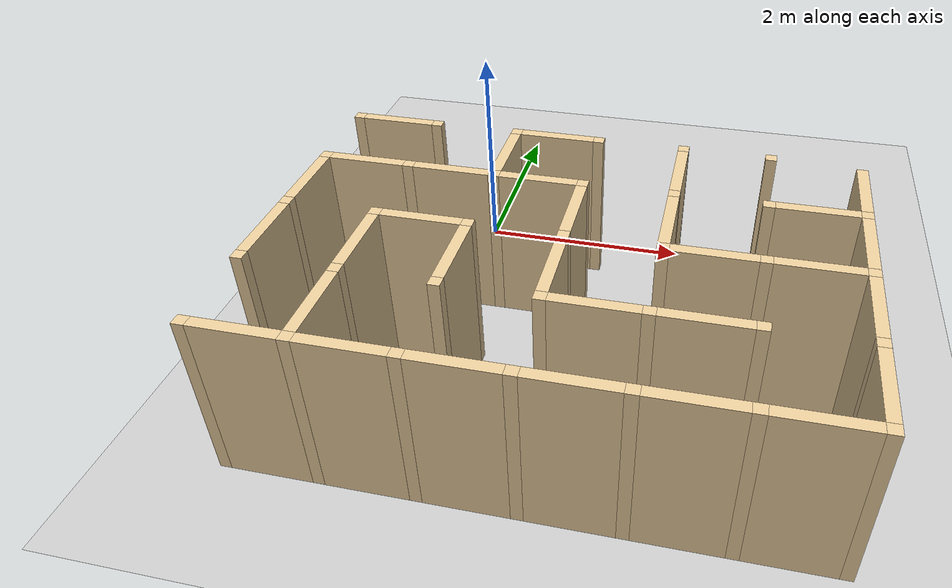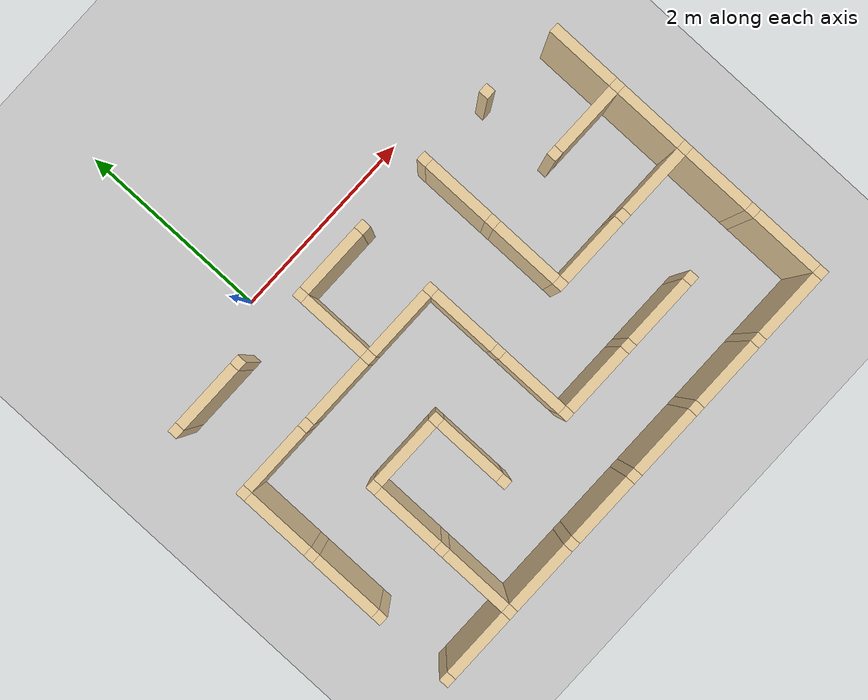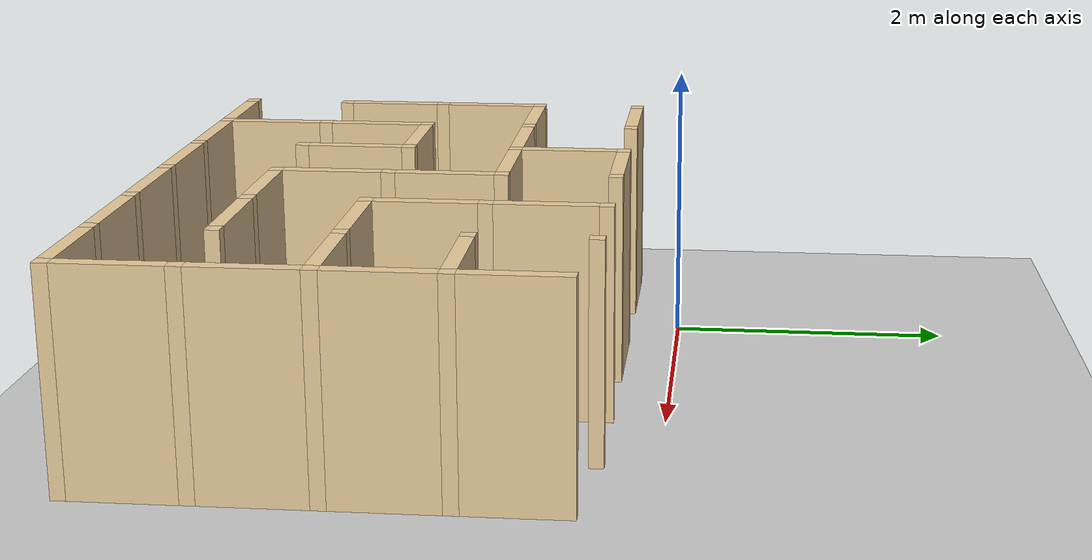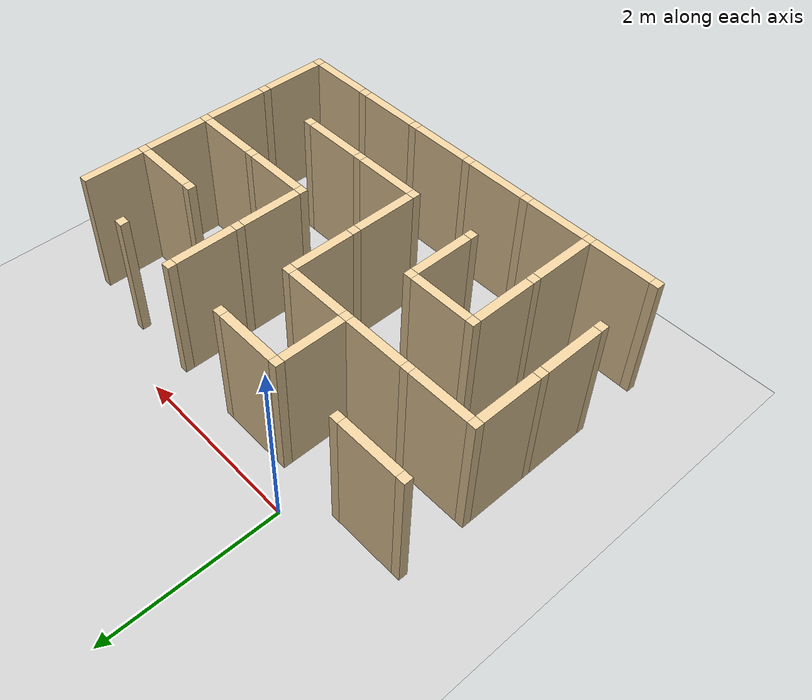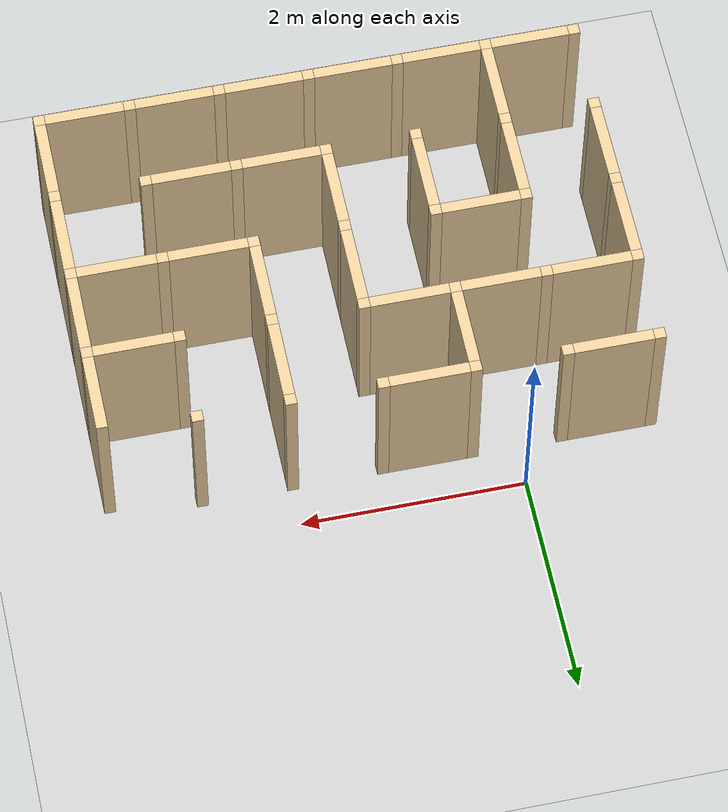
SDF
<sdf version="1.8">
 <world name="maze_world">
  <model name="ground_plane">
   <static>true</static>
   <link name="link">
    <collision name="collision">
     <geometry><plane><normal>0 0 1</normal><size>100 100</size></plane></geometry>
    </collision>
    <visual name="visual">
     <geometry><plane><normal>0 0 1</normal><size>100 100</size></plane></geometry>
     <material><ambient>0.8 0.8 0.8 1</ambient><diffuse>0.8 0.8 0.8 1</diffuse></material>
    </visual>
   </link>
  </model>
  <model name="maze">
   <link name="Wall_3_5_h">
    <collision name="Wall_0_Collision">
     <geometry><box><size>0.7000000000000001 0.1 1.5</size></box></geometry>
     <pose>0 0 0.75 0 -0 0</pose>
    </collision>
    <visual name="Wall_0_Visual">
     <pose>0 0 0.75 0 -0 0</pose>
     <geometry><box><size>0.7000000000000001 0.1 1.5</size></box></geometry>
     <material>
      <diffuse>0.921569 0.807843 0.615686 1</diffuse>
      <ambient>0.921569 0.807843 0.615686 1</ambient>
     </material>
     <meta><layer>0</layer></meta>
    </visual>
    <pose>-0.7999999999999998 -0.3999999999999999 0 0 -0 0</pose>
   </link>
   <link name="Joint_-1.1999999999999997_-0.3999999999999999">
    <collision name="Wall_2_Collision">
     <geometry><box><size>0.1 0.1 1.5</size></box></geometry>
     <pose>0 0 0.75 0 -0 0</pose>
    </collision>
    <visual name="Wall_2_Visual">
     <pose>0 0 0.75 0 -0 0</pose>
     <geometry><box><size>0.1 0.1 1.5</size></box></geometry>
     <material>
      <diffuse>0.921569 0.807843 0.615686 1</diffuse>
      <ambient>0.721569 0.907843 0.215686 1</ambient>
     </material>
     <meta><layer>0</layer></meta>
    </visual>
    <pose>-1.1999999999999997 -0.3999999999999999 0 0 -0 0</pose>
   </link>
   <link name="Joint_-0.3999999999999999_-0.3999999999999999">
    <collision name="Wall_2_Collision">
     <geometry><box><size>0.1 0.1 1.5</size></box></geometry>
     <pose>0 0 0.75 0 -0 0</pose>
    </collision>
    <visual name="Wall_2_Visual">
     <pose>0 0 0.75 0 -0 0</pose>
     <geometry><box><size>0.1 0.1 1.5</size></box></geometry>
     <material>
      <diffuse>0.921569 0.807843 0.615686 1</diffuse>
      <ambient>0.721569 0.907843 0.215686 1</ambient>
     </material>
     <meta><layer>0</layer></meta>
    </visual>
    <pose>-0.3999999999999999 -0.3999999999999999 0 0 -0 0</pose>
   </link>
   <link name="Wall_5_5_h">
    <collision name="Wall_0_Collision">
     <geometry><box><size>0.7000000000000001 0.1 1.5</size></box></geometry>
     <pose>0 0 0.75 0 -0 0</pose>
    </collision>
    <visual name="Wall_0_Visual">
     <pose>0 0 0.75 0 -0 0</pose>
     <geometry><box><size>0.7000000000000001 0.1 1.5</size></box></geometry>
     <material>
      <diffuse>0.921569 0.807843 0.615686 1</diffuse>
      <ambient>0.921569 0.807843 0.615686 1</ambient>
     </material>
     <meta><layer>0</layer></meta>
    </visual>
    <pose>0.8000000000000003 -0.3999999999999999 0 0 -0 0</pose>
   </link>
   <link name="Wall_5_5_v">
    <collision name="Wall_0_Collision">
     <geometry><box><size>0.7000000000000001 0.1 1.5</size></box></geometry>
     <pose>0 0 0.75 0 -0 0</pose>
    </collision>
    <visual name="Wall_0_Visual">
     <pose>0 0 0.75 0 -0 0</pose>
     <geometry><box><size>0.7000000000000001 0.1 1.5</size></box></geometry>
     <material>
      <diffuse>0.921569 0.807843 0.615686 1</diffuse>
      <ambient>0.921569 0.807843 0.615686 1</ambient>
     </material>
     <meta><layer>0</layer></meta>
    </visual>
    <pose>0.3999999999999999 -0.8000000000000003 0 0 -0 1.5708</pose>
   </link>
   <link name="Joint_0.3999999999999999_-0.3999999999999999">
    <collision name="Wall_2_Collision">
     <geometry><box><size>0.1 0.1 1.5</size></box></geometry>
     <pose>0 0 0.75 0 -0 0</pose>
    </collision>
    <visual name="Wall_2_Visual">
     <pose>0 0 0.75 0 -0 0</pose>
     <geometry><box><size>0.1 0.1 1.5</size></box></geometry>
     <material>
      <diffuse>0.921569 0.807843 0.615686 1</diffuse>
      <ambient>0.721569 0.907843 0.215686 1</ambient>
     </material>
     <meta><layer>0</layer></meta>
    </visual>
    <pose>0.3999999999999999 -0.3999999999999999 0 0 -0 0</pose>
   </link>
   <link name="Joint_1.2000000000000006_-0.3999999999999999">
    <collision name="Wall_2_Collision">
     <geometry><box><size>0.1 0.1 1.5</size></box></geometry>
     <pose>0 0 0.75 0 -0 0</pose>
    </collision>
    <visual name="Wall_2_Visual">
     <pose>0 0 0.75 0 -0 0</pose>
     <geometry><box><size>0.1 0.1 1.5</size></box></geometry>
     <material>
      <diffuse>0.921569 0.807843 0.615686 1</diffuse>
      <ambient>0.721569 0.907843 0.215686 1</ambient>
     </material>
     <meta><layer>0</layer></meta>
    </visual>
    <pose>1.2000000000000006 -0.3999999999999999 0 0 -0 0</pose>
   </link>
   <link name="Wall_7_5_v">
    <collision name="Wall_0_Collision">
     <geometry><box><size>0.7000000000000001 0.1 1.5</size></box></geometry>
     <pose>0 0 0.75 0 -0 0</pose>
    </collision>
    <visual name="Wall_0_Visual">
     <pose>0 0 0.75 0 -0 0</pose>
     <geometry><box><size>0.7000000000000001 0.1 1.5</size></box></geometry>
     <material>
      <diffuse>0.921569 0.807843 0.615686 1</diffuse>
      <ambient>0.921569 0.807843 0.615686 1</ambient>
     </material>
     <meta><layer>0</layer></meta>
    </visual>
    <pose>2.0000000000000004 -0.8000000000000003 0 0 -0 1.5708</pose>
   </link>
   <link name="Joint_2.0000000000000004_-0.3999999999999999">
    <collision name="Wall_2_Collision">
     <geometry><box><size>0.1 0.1 1.5</size></box></geometry>
     <pose>0 0 0.75 0 -0 0</pose>
    </collision>
    <visual name="Wall_2_Visual">
     <pose>0 0 0.75 0 -0 0</pose>
     <geometry><box><size>0.1 0.1 1.5</size></box></geometry>
     <material>
      <diffuse>0.921569 0.807843 0.615686 1</diffuse>
      <ambient>0.721569 0.907843 0.215686 1</ambient>
     </material>
     <meta><layer>0</layer></meta>
    </visual>
    <pose>2.0000000000000004 -0.3999999999999999 0 0 -0 0</pose>
   </link>
   <link name="Joint_2.8000000000000003_-0.3999999999999999">
    <collision name="Wall_2_Collision">
     <geometry><box><size>0.1 0.1 1.5</size></box></geometry>
     <pose>0 0 0.75 0 -0 0</pose>
    </collision>
    <visual name="Wall_2_Visual">
     <pose>0 0 0.75 0 -0 0</pose>
     <geometry><box><size>0.1 0.1 1.5</size></box></geometry>
     <material>
      <diffuse>0.921569 0.807843 0.615686 1</diffuse>
      <ambient>0.721569 0.907843 0.215686 1</ambient>
     </material>
     <meta><layer>0</layer></meta>
    </visual>
    <pose>2.8000000000000003 -0.3999999999999999 0 0 -0 0</pose>
   </link>
   <link name="Wall_9_5_v">
    <collision name="Wall_0_Collision">
     <geometry><box><size>0.7000000000000001 0.1 1.5</size></box></geometry>
     <pose>0 0 0.75 0 -0 0</pose>
    </collision>
    <visual name="Wall_0_Visual">
     <pose>0 0 0.75 0 -0 0</pose>
     <geometry><box><size>0.7000000000000001 0.1 1.5</size></box></geometry>
     <material>
      <diffuse>0.921569 0.807843 0.615686 1</diffuse>
      <ambient>0.921569 0.807843 0.615686 1</ambient>
     </material>
     <meta><layer>0</layer></meta>
    </visual>
    <pose>3.6 -0.8000000000000003 0 0 -0 1.5708</pose>
   </link>
   <link name="Wall_3_6_h">
    <collision name="Wall_0_Collision">
     <geometry><box><size>0.7000000000000001 0.1 1.5</size></box></geometry>
     <pose>0 0 0.75 0 -0 0</pose>
    </collision>
    <visual name="Wall_0_Visual">
     <pose>0 0 0.75 0 -0 0</pose>
     <geometry><box><size>0.7000000000000001 0.1 1.5</size></box></geometry>
     <material>
      <diffuse>0.921569 0.807843 0.615686 1</diffuse>
      <ambient>0.921569 0.807843 0.615686 1</ambient>
     </material>
     <meta><layer>0</layer></meta>
    </visual>
    <pose>-0.7999999999999998 -1.2000000000000006 0 0 -0 0</pose>
   </link>
   <link name="Wall_3_6_v">
    <collision name="Wall_0_Collision">
     <geometry><box><size>0.7000000000000001 0.1 1.5</size></box></geometry>
     <pose>0 0 0.75 0 -0 0</pose>
    </collision>
    <visual name="Wall_0_Visual">
     <pose>0 0 0.75 0 -0 0</pose>
     <geometry><box><size>0.7000000000000001 0.1 1.5</size></box></geometry>
     <material>
      <diffuse>0.921569 0.807843 0.615686 1</diffuse>
      <ambient>0.921569 0.807843 0.615686 1</ambient>
     </material>
     <meta><layer>0</layer></meta>
    </visual>
    <pose>-1.1999999999999997 -1.600000000000001 0 0 -0 1.5708</pose>
   </link>
   <link name="Joint_-1.1999999999999997_-1.2000000000000006">
    <collision name="Wall_2_Collision">
     <geometry><box><size>0.1 0.1 1.5</size></box></geometry>
     <pose>0 0 0.75 0 -0 0</pose>
    </collision>
    <visual name="Wall_2_Visual">
     <pose>0 0 0.75 0 -0 0</pose>
     <geometry><box><size>0.1 0.1 1.5</size></box></geometry>
     <material>
      <diffuse>0.921569 0.807843 0.615686 1</diffuse>
      <ambient>0.721569 0.907843 0.215686 1</ambient>
     </material>
     <meta><layer>0</layer></meta>
    </visual>
    <pose>-1.1999999999999997 -1.2000000000000006 0 0 -0 0</pose>
   </link>
   <link name="Wall_4_6_h">
    <collision name="Wall_0_Collision">
     <geometry><box><size>0.7000000000000001 0.1 1.5</size></box></geometry>
     <pose>0 0 0.75 0 -0 0</pose>
    </collision>
    <visual name="Wall_0_Visual">
     <pose>0 0 0.75 0 -0 0</pose>
     <geometry><box><size>0.7000000000000001 0.1 1.5</size></box></geometry>
     <material>
      <diffuse>0.921569 0.807843 0.615686 1</diffuse>
      <ambient>0.921569 0.807843 0.615686 1</ambient>
     </material>
     <meta><layer>0</layer></meta>
    </visual>
    <pose>0.0 -1.2000000000000006 0 0 -0 0</pose>
   </link>
   <link name="Joint_-0.3999999999999999_-1.2000000000000006">
    <collision name="Wall_2_Collision">
     <geometry><box><size>0.1 0.1 1.5</size></box></geometry>
     <pose>0 0 0.75 0 -0 0</pose>
    </collision>
    <visual name="Wall_2_Visual">
     <pose>0 0 0.75 0 -0 0</pose>
     <geometry><box><size>0.1 0.1 1.5</size></box></geometry>
     <material>
      <diffuse>0.921569 0.807843 0.615686 1</diffuse>
      <ambient>0.721569 0.907843 0.215686 1</ambient>
     </material>
     <meta><layer>0</layer></meta>
    </visual>
    <pose>-0.3999999999999999 -1.2000000000000006 0 0 -0 0</pose>
   </link>
   <link name="Wall_5_6_h">
    <collision name="Wall_0_Collision">
     <geometry><box><size>0.7000000000000001 0.1 1.5</size></box></geometry>
     <pose>0 0 0.75 0 -0 0</pose>
    </collision>
    <visual name="Wall_0_Visual">
     <pose>0 0 0.75 0 -0 0</pose>
     <geometry><box><size>0.7000000000000001 0.1 1.5</size></box></geometry>
     <material>
      <diffuse>0.921569 0.807843 0.615686 1</diffuse>
      <ambient>0.921569 0.807843 0.615686 1</ambient>
     </material>
     <meta><layer>0</layer></meta>
    </visual>
    <pose>0.8000000000000003 -1.2000000000000006 0 0 -0 0</pose>
   </link>
   <link name="Joint_0.3999999999999999_-1.2000000000000006">
    <collision name="Wall_2_Collision">
     <geometry><box><size>0.1 0.1 1.5</size></box></geometry>
     <pose>0 0 0.75 0 -0 0</pose>
    </collision>
    <visual name="Wall_2_Visual">
     <pose>0 0 0.75 0 -0 0</pose>
     <geometry><box><size>0.1 0.1 1.5</size></box></geometry>
     <material>
      <diffuse>0.921569 0.807843 0.615686 1</diffuse>
      <ambient>0.721569 0.907843 0.215686 1</ambient>
     </material>
     <meta><layer>0</layer></meta>
    </visual>
    <pose>0.3999999999999999 -1.2000000000000006 0 0 -0 0</pose>
   </link>
   <link name="Wall_6_6_v">
    <collision name="Wall_0_Collision">
     <geometry><box><size>0.7000000000000001 0.1 1.5</size></box></geometry>
     <pose>0 0 0.75 0 -0 0</pose>
    </collision>
    <visual name="Wall_0_Visual">
     <pose>0 0 0.75 0 -0 0</pose>
     <geometry><box><size>0.7000000000000001 0.1 1.5</size></box></geometry>
     <material>
      <diffuse>0.921569 0.807843 0.615686 1</diffuse>
      <ambient>0.921569 0.807843 0.615686 1</ambient>
     </material>
     <meta><layer>0</layer></meta>
    </visual>
    <pose>1.2000000000000006 -1.600000000000001 0 0 -0 1.5708</pose>
   </link>
   <link name="Joint_1.2000000000000006_-1.2000000000000006">
    <collision name="Wall_2_Collision">
     <geometry><box><size>0.1 0.1 1.5</size></box></geometry>
     <pose>0 0 0.75 0 -0 0</pose>
    </collision>
    <visual name="Wall_2_Visual">
     <pose>0 0 0.75 0 -0 0</pose>
     <geometry><box><size>0.1 0.1 1.5</size></box></geometry>
     <material>
      <diffuse>0.921569 0.807843 0.615686 1</diffuse>
      <ambient>0.721569 0.907843 0.215686 1</ambient>
     </material>
     <meta><layer>0</layer></meta>
    </visual>
    <pose>1.2000000000000006 -1.2000000000000006 0 0 -0 0</pose>
   </link>
   <link name="Wall_7_6_v">
    <collision name="Wall_0_Collision">
     <geometry><box><size>0.7000000000000001 0.1 1.5</size></box></geometry>
     <pose>0 0 0.75 0 -0 0</pose>
    </collision>
    <visual name="Wall_0_Visual">
     <pose>0 0 0.75 0 -0 0</pose>
     <geometry><box><size>0.7000000000000001 0.1 1.5</size></box></geometry>
     <material>
      <diffuse>0.921569 0.807843 0.615686 1</diffuse>
      <ambient>0.921569 0.807843 0.615686 1</ambient>
     </material>
     <meta><layer>0</layer></meta>
    </visual>
    <pose>2.0000000000000004 -1.600000000000001 0 0 -0 1.5708</pose>
   </link>
   <link name="Joint_2.0000000000000004_-1.2000000000000006">
    <collision name="Wall_2_Collision">
     <geometry><box><size>0.1 0.1 1.5</size></box></geometry>
     <pose>0 0 0.75 0 -0 0</pose>
    </collision>
    <visual name="Wall_2_Visual">
     <pose>0 0 0.75 0 -0 0</pose>
     <geometry><box><size>0.1 0.1 1.5</size></box></geometry>
     <material>
      <diffuse>0.921569 0.807843 0.615686 1</diffuse>
      <ambient>0.721569 0.907843 0.215686 1</ambient>
     </material>
     <meta><layer>0</layer></meta>
    </visual>
    <pose>2.0000000000000004 -1.2000000000000006 0 0 -0 0</pose>
   </link>
   <link name="Wall_8_6_h">
    <collision name="Wall_0_Collision">
     <geometry><box><size>0.7000000000000001 0.1 1.5</size></box></geometry>
     <pose>0 0 0.75 0 -0 0</pose>
    </collision>
    <visual name="Wall_0_Visual">
     <pose>0 0 0.75 0 -0 0</pose>
     <geometry><box><size>0.7000000000000001 0.1 1.5</size></box></geometry>
     <material>
      <diffuse>0.921569 0.807843 0.615686 1</diffuse>
      <ambient>0.921569 0.807843 0.615686 1</ambient>
     </material>
     <meta><layer>0</layer></meta>
    </visual>
    <pose>3.2000000000000006 -1.2000000000000006 0 0 -0 0</pose>
   </link>
   <link name="Joint_2.8000000000000003_-1.2000000000000006">
    <collision name="Wall_2_Collision">
     <geometry><box><size>0.1 0.1 1.5</size></box></geometry>
     <pose>0 0 0.75 0 -0 0</pose>
    </collision>
    <visual name="Wall_2_Visual">
     <pose>0 0 0.75 0 -0 0</pose>
     <geometry><box><size>0.1 0.1 1.5</size></box></geometry>
     <material>
      <diffuse>0.921569 0.807843 0.615686 1</diffuse>
      <ambient>0.721569 0.907843 0.215686 1</ambient>
     </material>
     <meta><layer>0</layer></meta>
    </visual>
    <pose>2.8000000000000003 -1.2000000000000006 0 0 -0 0</pose>
   </link>
   <link name="Wall_9_6_v">
    <collision name="Wall_0_Collision">
     <geometry><box><size>0.7000000000000001 0.1 1.5</size></box></geometry>
     <pose>0 0 0.75 0 -0 0</pose>
    </collision>
    <visual name="Wall_0_Visual">
     <pose>0 0 0.75 0 -0 0</pose>
     <geometry><box><size>0.7000000000000001 0.1 1.5</size></box></geometry>
     <material>
      <diffuse>0.921569 0.807843 0.615686 1</diffuse>
      <ambient>0.921569 0.807843 0.615686 1</ambient>
     </material>
     <meta><layer>0</layer></meta>
    </visual>
    <pose>3.6 -1.600000000000001 0 0 -0 1.5708</pose>
   </link>
   <link name="Joint_3.6_-1.2000000000000006">
    <collision name="Wall_2_Collision">
     <geometry><box><size>0.1 0.1 1.5</size></box></geometry>
     <pose>0 0 0.75 0 -0 0</pose>
    </collision>
    <visual name="Wall_2_Visual">
     <pose>0 0 0.75 0 -0 0</pose>
     <geometry><box><size>0.1 0.1 1.5</size></box></geometry>
     <material>
      <diffuse>0.921569 0.807843 0.615686 1</diffuse>
      <ambient>0.721569 0.907843 0.215686 1</ambient>
     </material>
     <meta><layer>0</layer></meta>
    </visual>
    <pose>3.6 -1.2000000000000006 0 0 -0 0</pose>
   </link>
   <link name="Wall_3_7_v">
    <collision name="Wall_0_Collision">
     <geometry><box><size>0.7000000000000001 0.1 1.5</size></box></geometry>
     <pose>0 0 0.75 0 -0 0</pose>
    </collision>
    <visual name="Wall_0_Visual">
     <pose>0 0 0.75 0 -0 0</pose>
     <geometry><box><size>0.7000000000000001 0.1 1.5</size></box></geometry>
     <material>
      <diffuse>0.921569 0.807843 0.615686 1</diffuse>
      <ambient>0.921569 0.807843 0.615686 1</ambient>
     </material>
     <meta><layer>0</layer></meta>
    </visual>
    <pose>-1.1999999999999997 -2.400000000000001 0 0 -0 1.5708</pose>
   </link>
   <link name="Joint_-1.1999999999999997_-2.0000000000000004">
    <collision name="Wall_2_Collision">
     <geometry><box><size>0.1 0.1 1.5</size></box></geometry>
     <pose>0 0 0.75 0 -0 0</pose>
    </collision>
    <visual name="Wall_2_Visual">
     <pose>0 0 0.75 0 -0 0</pose>
     <geometry><box><size>0.1 0.1 1.5</size></box></geometry>
     <material>
      <diffuse>0.921569 0.807843 0.615686 1</diffuse>
      <ambient>0.721569 0.907843 0.215686 1</ambient>
     </material>
     <meta><layer>0</layer></meta>
    </visual>
    <pose>-1.1999999999999997 -2.0000000000000004 0 0 -0 0</pose>
   </link>
   <link name="Wall_4_7_h">
    <collision name="Wall_0_Collision">
     <geometry><box><size>0.7000000000000001 0.1 1.5</size></box></geometry>
     <pose>0 0 0.75 0 -0 0</pose>
    </collision>
    <visual name="Wall_0_Visual">
     <pose>0 0 0.75 0 -0 0</pose>
     <geometry><box><size>0.7000000000000001 0.1 1.5</size></box></geometry>
     <material>
      <diffuse>0.921569 0.807843 0.615686 1</diffuse>
      <ambient>0.921569 0.807843 0.615686 1</ambient>
     </material>
     <meta><layer>0</layer></meta>
    </visual>
    <pose>0.0 -2.0000000000000004 0 0 -0 0</pose>
   </link>
   <link name="Wall_4_7_v">
    <collision name="Wall_0_Collision">
     <geometry><box><size>0.7000000000000001 0.1 1.5</size></box></geometry>
     <pose>0 0 0.75 0 -0 0</pose>
    </collision>
    <visual name="Wall_0_Visual">
     <pose>0 0 0.75 0 -0 0</pose>
     <geometry><box><size>0.7000000000000001 0.1 1.5</size></box></geometry>
     <material>
      <diffuse>0.921569 0.807843 0.615686 1</diffuse>
      <ambient>0.921569 0.807843 0.615686 1</ambient>
     </material>
     <meta><layer>0</layer></meta>
    </visual>
    <pose>-0.3999999999999999 -2.400000000000001 0 0 -0 1.5708</pose>
   </link>
   <link name="Joint_-0.3999999999999999_-2.0000000000000004">
    <collision name="Wall_2_Collision">
     <geometry><box><size>0.1 0.1 1.5</size></box></geometry>
     <pose>0 0 0.75 0 -0 0</pose>
    </collision>
    <visual name="Wall_2_Visual">
     <pose>0 0 0.75 0 -0 0</pose>
     <geometry><box><size>0.1 0.1 1.5</size></box></geometry>
     <material>
      <diffuse>0.921569 0.807843 0.615686 1</diffuse>
      <ambient>0.721569 0.907843 0.215686 1</ambient>
     </material>
     <meta><layer>0</layer></meta>
    </visual>
    <pose>-0.3999999999999999 -2.0000000000000004 0 0 -0 0</pose>
   </link>
   <link name="Wall_5_7_v">
    <collision name="Wall_0_Collision">
     <geometry><box><size>0.7000000000000001 0.1 1.5</size></box></geometry>
     <pose>0 0 0.75 0 -0 0</pose>
    </collision>
    <visual name="Wall_0_Visual">
     <pose>0 0 0.75 0 -0 0</pose>
     <geometry><box><size>0.7000000000000001 0.1 1.5</size></box></geometry>
     <material>
      <diffuse>0.921569 0.807843 0.615686 1</diffuse>
      <ambient>0.921569 0.807843 0.615686 1</ambient>
     </material>
     <meta><layer>0</layer></meta>
    </visual>
    <pose>0.3999999999999999 -2.400000000000001 0 0 -0 1.5708</pose>
   </link>
   <link name="Joint_0.3999999999999999_-2.0000000000000004">
    <collision name="Wall_2_Collision">
     <geometry><box><size>0.1 0.1 1.5</size></box></geometry>
     <pose>0 0 0.75 0 -0 0</pose>
    </collision>
    <visual name="Wall_2_Visual">
     <pose>0 0 0.75 0 -0 0</pose>
     <geometry><box><size>0.1 0.1 1.5</size></box></geometry>
     <material>
      <diffuse>0.921569 0.807843 0.615686 1</diffuse>
      <ambient>0.721569 0.907843 0.215686 1</ambient>
     </material>
     <meta><layer>0</layer></meta>
    </visual>
    <pose>0.3999999999999999 -2.0000000000000004 0 0 -0 0</pose>
   </link>
   <link name="Wall_6_7_v">
    <collision name="Wall_0_Collision">
     <geometry><box><size>0.7000000000000001 0.1 1.5</size></box></geometry>
     <pose>0 0 0.75 0 -0 0</pose>
    </collision>
    <visual name="Wall_0_Visual">
     <pose>0 0 0.75 0 -0 0</pose>
     <geometry><box><size>0.7000000000000001 0.1 1.5</size></box></geometry>
     <material>
      <diffuse>0.921569 0.807843 0.615686 1</diffuse>
      <ambient>0.921569 0.807843 0.615686 1</ambient>
     </material>
     <meta><layer>0</layer></meta>
    </visual>
    <pose>1.2000000000000006 -2.400000000000001 0 0 -0 1.5708</pose>
   </link>
   <link name="Joint_1.2000000000000006_-2.0000000000000004">
    <collision name="Wall_2_Collision">
     <geometry><box><size>0.1 0.1 1.5</size></box></geometry>
     <pose>0 0 0.75 0 -0 0</pose>
    </collision>
    <visual name="Wall_2_Visual">
     <pose>0 0 0.75 0 -0 0</pose>
     <geometry><box><size>0.1 0.1 1.5</size></box></geometry>
     <material>
      <diffuse>0.921569 0.807843 0.615686 1</diffuse>
      <ambient>0.721569 0.907843 0.215686 1</ambient>
     </material>
     <meta><layer>0</layer></meta>
    </visual>
    <pose>1.2000000000000006 -2.0000000000000004 0 0 -0 0</pose>
   </link>
   <link name="Wall_7_7_h">
    <collision name="Wall_0_Collision">
     <geometry><box><size>0.7000000000000001 0.1 1.5</size></box></geometry>
     <pose>0 0 0.75 0 -0 0</pose>
    </collision>
    <visual name="Wall_0_Visual">
     <pose>0 0 0.75 0 -0 0</pose>
     <geometry><box><size>0.7000000000000001 0.1 1.5</size></box></geometry>
     <material>
      <diffuse>0.921569 0.807843 0.615686 1</diffuse>
      <ambient>0.921569 0.807843 0.615686 1</ambient>
     </material>
     <meta><layer>0</layer></meta>
    </visual>
    <pose>2.400000000000001 -2.0000000000000004 0 0 -0 0</pose>
   </link>
   <link name="Joint_2.0000000000000004_-2.0000000000000004">
    <collision name="Wall_2_Collision">
     <geometry><box><size>0.1 0.1 1.5</size></box></geometry>
     <pose>0 0 0.75 0 -0 0</pose>
    </collision>
    <visual name="Wall_2_Visual">
     <pose>0 0 0.75 0 -0 0</pose>
     <geometry><box><size>0.1 0.1 1.5</size></box></geometry>
     <material>
      <diffuse>0.921569 0.807843 0.615686 1</diffuse>
      <ambient>0.721569 0.907843 0.215686 1</ambient>
     </material>
     <meta><layer>0</layer></meta>
    </visual>
    <pose>2.0000000000000004 -2.0000000000000004 0 0 -0 0</pose>
   </link>
   <link name="Wall_8_7_h">
    <collision name="Wall_0_Collision">
     <geometry><box><size>0.7000000000000001 0.1 1.5</size></box></geometry>
     <pose>0 0 0.75 0 -0 0</pose>
    </collision>
    <visual name="Wall_0_Visual">
     <pose>0 0 0.75 0 -0 0</pose>
     <geometry><box><size>0.7000000000000001 0.1 1.5</size></box></geometry>
     <material>
      <diffuse>0.921569 0.807843 0.615686 1</diffuse>
      <ambient>0.921569 0.807843 0.615686 1</ambient>
     </material>
     <meta><layer>0</layer></meta>
    </visual>
    <pose>3.2000000000000006 -2.0000000000000004 0 0 -0 0</pose>
   </link>
   <link name="Joint_2.8000000000000003_-2.0000000000000004">
    <collision name="Wall_2_Collision">
     <geometry><box><size>0.1 0.1 1.5</size></box></geometry>
     <pose>0 0 0.75 0 -0 0</pose>
    </collision>
    <visual name="Wall_2_Visual">
     <pose>0 0 0.75 0 -0 0</pose>
     <geometry><box><size>0.1 0.1 1.5</size></box></geometry>
     <material>
      <diffuse>0.921569 0.807843 0.615686 1</diffuse>
      <ambient>0.721569 0.907843 0.215686 1</ambient>
     </material>
     <meta><layer>0</layer></meta>
    </visual>
    <pose>2.8000000000000003 -2.0000000000000004 0 0 -0 0</pose>
   </link>
   <link name="Wall_9_7_v">
    <collision name="Wall_0_Collision">
     <geometry><box><size>0.7000000000000001 0.1 1.5</size></box></geometry>
     <pose>0 0 0.75 0 -0 0</pose>
    </collision>
    <visual name="Wall_0_Visual">
     <pose>0 0 0.75 0 -0 0</pose>
     <geometry><box><size>0.7000000000000001 0.1 1.5</size></box></geometry>
     <material>
      <diffuse>0.921569 0.807843 0.615686 1</diffuse>
      <ambient>0.921569 0.807843 0.615686 1</ambient>
     </material>
     <meta><layer>0</layer></meta>
    </visual>
    <pose>3.6 -2.400000000000001 0 0 -0 1.5708</pose>
   </link>
   <link name="Joint_3.6_-2.0000000000000004">
    <collision name="Wall_2_Collision">
     <geometry><box><size>0.1 0.1 1.5</size></box></geometry>
     <pose>0 0 0.75 0 -0 0</pose>
    </collision>
    <visual name="Wall_2_Visual">
     <pose>0 0 0.75 0 -0 0</pose>
     <geometry><box><size>0.1 0.1 1.5</size></box></geometry>
     <material>
      <diffuse>0.921569 0.807843 0.615686 1</diffuse>
      <ambient>0.721569 0.907843 0.215686 1</ambient>
     </material>
     <meta><layer>0</layer></meta>
    </visual>
    <pose>3.6 -2.0000000000000004 0 0 -0 0</pose>
   </link>
   <link name="Joint_-1.1999999999999997_-2.8000000000000003">
    <collision name="Wall_2_Collision">
     <geometry><box><size>0.1 0.1 1.5</size></box></geometry>
     <pose>0 0 0.75 0 -0 0</pose>
    </collision>
    <visual name="Wall_2_Visual">
     <pose>0 0 0.75 0 -0 0</pose>
     <geometry><box><size>0.1 0.1 1.5</size></box></geometry>
     <material>
      <diffuse>0.921569 0.807843 0.615686 1</diffuse>
      <ambient>0.721569 0.907843 0.215686 1</ambient>
     </material>
     <meta><layer>0</layer></meta>
    </visual>
    <pose>-1.1999999999999997 -2.8000000000000003 0 0 -0 0</pose>
   </link>
   <link name="Wall_3_9_h">
    <collision name="Wall_0_Collision">
     <geometry><box><size>0.7000000000000001 0.1 1.5</size></box></geometry>
     <pose>0 0 0.75 0 -0 0</pose>
    </collision>
    <visual name="Wall_0_Visual">
     <pose>0 0 0.75 0 -0 0</pose>
     <geometry><box><size>0.7000000000000001 0.1 1.5</size></box></geometry>
     <material>
      <diffuse>0.921569 0.807843 0.615686 1</diffuse>
      <ambient>0.921569 0.807843 0.615686 1</ambient>
     </material>
     <meta><layer>0</layer></meta>
    </visual>
    <pose>-0.7999999999999998 -3.6 0 0 -0 0</pose>
   </link>
   <link name="Joint_-1.1999999999999997_-3.6">
    <collision name="Wall_2_Collision">
     <geometry><box><size>0.1 0.1 1.5</size></box></geometry>
     <pose>0 0 0.75 0 -0 0</pose>
    </collision>
    <visual name="Wall_2_Visual">
     <pose>0 0 0.75 0 -0 0</pose>
     <geometry><box><size>0.1 0.1 1.5</size></box></geometry>
     <material>
      <diffuse>0.921569 0.807843 0.615686 1</diffuse>
      <ambient>0.721569 0.907843 0.215686 1</ambient>
     </material>
     <meta><layer>0</layer></meta>
    </visual>
    <pose>-1.1999999999999997 -3.6 0 0 -0 0</pose>
   </link>
   <link name="Wall_4_8_v">
    <collision name="Wall_0_Collision">
     <geometry><box><size>0.7000000000000001 0.1 1.5</size></box></geometry>
     <pose>0 0 0.75 0 -0 0</pose>
    </collision>
    <visual name="Wall_0_Visual">
     <pose>0 0 0.75 0 -0 0</pose>
     <geometry><box><size>0.7000000000000001 0.1 1.5</size></box></geometry>
     <material>
      <diffuse>0.921569 0.807843 0.615686 1</diffuse>
      <ambient>0.921569 0.807843 0.615686 1</ambient>
     </material>
     <meta><layer>0</layer></meta>
    </visual>
    <pose>-0.3999999999999999 -3.2000000000000006 0 0 -0 1.5708</pose>
   </link>
   <link name="Joint_-0.3999999999999999_-2.8000000000000003">
    <collision name="Wall_2_Collision">
     <geometry><box><size>0.1 0.1 1.5</size></box></geometry>
     <pose>0 0 0.75 0 -0 0</pose>
    </collision>
    <visual name="Wall_2_Visual">
     <pose>0 0 0.75 0 -0 0</pose>
     <geometry><box><size>0.1 0.1 1.5</size></box></geometry>
     <material>
      <diffuse>0.921569 0.807843 0.615686 1</diffuse>
      <ambient>0.721569 0.907843 0.215686 1</ambient>
     </material>
     <meta><layer>0</layer></meta>
    </visual>
    <pose>-0.3999999999999999 -2.8000000000000003 0 0 -0 0</pose>
   </link>
   <link name="Wall_4_9_h">
    <collision name="Wall_0_Collision">
     <geometry><box><size>0.7000000000000001 0.1 1.5</size></box></geometry>
     <pose>0 0 0.75 0 -0 0</pose>
    </collision>
    <visual name="Wall_0_Visual">
     <pose>0 0 0.75 0 -0 0</pose>
     <geometry><box><size>0.7000000000000001 0.1 1.5</size></box></geometry>
     <material>
      <diffuse>0.921569 0.807843 0.615686 1</diffuse>
      <ambient>0.921569 0.807843 0.615686 1</ambient>
     </material>
     <meta><layer>0</layer></meta>
    </visual>
    <pose>0.0 -3.6 0 0 -0 0</pose>
   </link>
   <link name="Joint_-0.3999999999999999_-3.6">
    <collision name="Wall_2_Collision">
     <geometry><box><size>0.1 0.1 1.5</size></box></geometry>
     <pose>0 0 0.75 0 -0 0</pose>
    </collision>
    <visual name="Wall_2_Visual">
     <pose>0 0 0.75 0 -0 0</pose>
     <geometry><box><size>0.1 0.1 1.5</size></box></geometry>
     <material>
      <diffuse>0.921569 0.807843 0.615686 1</diffuse>
      <ambient>0.721569 0.907843 0.215686 1</ambient>
     </material>
     <meta><layer>0</layer></meta>
    </visual>
    <pose>-0.3999999999999999 -3.6 0 0 -0 0</pose>
   </link>
   <link name="Joint_0.3999999999999999_-2.8000000000000003">
    <collision name="Wall_2_Collision">
     <geometry><box><size>0.1 0.1 1.5</size></box></geometry>
     <pose>0 0 0.75 0 -0 0</pose>
    </collision>
    <visual name="Wall_2_Visual">
     <pose>0 0 0.75 0 -0 0</pose>
     <geometry><box><size>0.1 0.1 1.5</size></box></geometry>
     <material>
      <diffuse>0.921569 0.807843 0.615686 1</diffuse>
      <ambient>0.721569 0.907843 0.215686 1</ambient>
     </material>
     <meta><layer>0</layer></meta>
    </visual>
    <pose>0.3999999999999999 -2.8000000000000003 0 0 -0 0</pose>
   </link>
   <link name="Wall_5_9_h">
    <collision name="Wall_0_Collision">
     <geometry><box><size>0.7000000000000001 0.1 1.5</size></box></geometry>
     <pose>0 0 0.75 0 -0 0</pose>
    </collision>
    <visual name="Wall_0_Visual">
     <pose>0 0 0.75 0 -0 0</pose>
     <geometry><box><size>0.7000000000000001 0.1 1.5</size></box></geometry>
     <material>
      <diffuse>0.921569 0.807843 0.615686 1</diffuse>
      <ambient>0.921569 0.807843 0.615686 1</ambient>
     </material>
     <meta><layer>0</layer></meta>
    </visual>
    <pose>0.8000000000000003 -3.6 0 0 -0 0</pose>
   </link>
   <link name="Joint_0.3999999999999999_-3.6">
    <collision name="Wall_2_Collision">
     <geometry><box><size>0.1 0.1 1.5</size></box></geometry>
     <pose>0 0 0.75 0 -0 0</pose>
    </collision>
    <visual name="Wall_2_Visual">
     <pose>0 0 0.75 0 -0 0</pose>
     <geometry><box><size>0.1 0.1 1.5</size></box></geometry>
     <material>
      <diffuse>0.921569 0.807843 0.615686 1</diffuse>
      <ambient>0.721569 0.907843 0.215686 1</ambient>
     </material>
     <meta><layer>0</layer></meta>
    </visual>
    <pose>0.3999999999999999 -3.6 0 0 -0 0</pose>
   </link>
   <link name="Wall_6_8_h">
    <collision name="Wall_0_Collision">
     <geometry><box><size>0.7000000000000001 0.1 1.5</size></box></geometry>
     <pose>0 0 0.75 0 -0 0</pose>
    </collision>
    <visual name="Wall_0_Visual">
     <pose>0 0 0.75 0 -0 0</pose>
     <geometry><box><size>0.7000000000000001 0.1 1.5</size></box></geometry>
     <material>
      <diffuse>0.921569 0.807843 0.615686 1</diffuse>
      <ambient>0.921569 0.807843 0.615686 1</ambient>
     </material>
     <meta><layer>0</layer></meta>
    </visual>
    <pose>1.600000000000001 -2.8000000000000003 0 0 -0 0</pose>
   </link>
   <link name="Joint_1.2000000000000006_-2.8000000000000003">
    <collision name="Wall_2_Collision">
     <geometry><box><size>0.1 0.1 1.5</size></box></geometry>
     <pose>0 0 0.75 0 -0 0</pose>
    </collision>
    <visual name="Wall_2_Visual">
     <pose>0 0 0.75 0 -0 0</pose>
     <geometry><box><size>0.1 0.1 1.5</size></box></geometry>
     <material>
      <diffuse>0.921569 0.807843 0.615686 1</diffuse>
      <ambient>0.721569 0.907843 0.215686 1</ambient>
     </material>
     <meta><layer>0</layer></meta>
    </visual>
    <pose>1.2000000000000006 -2.8000000000000003 0 0 -0 0</pose>
   </link>
   <link name="Wall_6_9_h">
    <collision name="Wall_0_Collision">
     <geometry><box><size>0.7000000000000001 0.1 1.5</size></box></geometry>
     <pose>0 0 0.75 0 -0 0</pose>
    </collision>
    <visual name="Wall_0_Visual">
     <pose>0 0 0.75 0 -0 0</pose>
     <geometry><box><size>0.7000000000000001 0.1 1.5</size></box></geometry>
     <material>
      <diffuse>0.921569 0.807843 0.615686 1</diffuse>
      <ambient>0.921569 0.807843 0.615686 1</ambient>
     </material>
     <meta><layer>0</layer></meta>
    </visual>
    <pose>1.600000000000001 -3.6 0 0 -0 0</pose>
   </link>
   <link name="Joint_1.2000000000000006_-3.6">
    <collision name="Wall_2_Collision">
     <geometry><box><size>0.1 0.1 1.5</size></box></geometry>
     <pose>0 0 0.75 0 -0 0</pose>
    </collision>
    <visual name="Wall_2_Visual">
     <pose>0 0 0.75 0 -0 0</pose>
     <geometry><box><size>0.1 0.1 1.5</size></box></geometry>
     <material>
      <diffuse>0.921569 0.807843 0.615686 1</diffuse>
      <ambient>0.721569 0.907843 0.215686 1</ambient>
     </material>
     <meta><layer>0</layer></meta>
    </visual>
    <pose>1.2000000000000006 -3.6 0 0 -0 0</pose>
   </link>
   <link name="Wall_7_8_h">
    <collision name="Wall_0_Collision">
     <geometry><box><size>0.7000000000000001 0.1 1.5</size></box></geometry>
     <pose>0 0 0.75 0 -0 0</pose>
    </collision>
    <visual name="Wall_0_Visual">
     <pose>0 0 0.75 0 -0 0</pose>
     <geometry><box><size>0.7000000000000001 0.1 1.5</size></box></geometry>
     <material>
      <diffuse>0.921569 0.807843 0.615686 1</diffuse>
      <ambient>0.921569 0.807843 0.615686 1</ambient>
     </material>
     <meta><layer>0</layer></meta>
    </visual>
    <pose>2.400000000000001 -2.8000000000000003 0 0 -0 0</pose>
   </link>
   <link name="Joint_2.0000000000000004_-2.8000000000000003">
    <collision name="Wall_2_Collision">
     <geometry><box><size>0.1 0.1 1.5</size></box></geometry>
     <pose>0 0 0.75 0 -0 0</pose>
    </collision>
    <visual name="Wall_2_Visual">
     <pose>0 0 0.75 0 -0 0</pose>
     <geometry><box><size>0.1 0.1 1.5</size></box></geometry>
     <material>
      <diffuse>0.921569 0.807843 0.615686 1</diffuse>
      <ambient>0.721569 0.907843 0.215686 1</ambient>
     </material>
     <meta><layer>0</layer></meta>
    </visual>
    <pose>2.0000000000000004 -2.8000000000000003 0 0 -0 0</pose>
   </link>
   <link name="Wall_7_9_h">
    <collision name="Wall_0_Collision">
     <geometry><box><size>0.7000000000000001 0.1 1.5</size></box></geometry>
     <pose>0 0 0.75 0 -0 0</pose>
    </collision>
    <visual name="Wall_0_Visual">
     <pose>0 0 0.75 0 -0 0</pose>
     <geometry><box><size>0.7000000000000001 0.1 1.5</size></box></geometry>
     <material>
      <diffuse>0.921569 0.807843 0.615686 1</diffuse>
      <ambient>0.921569 0.807843 0.615686 1</ambient>
     </material>
     <meta><layer>0</layer></meta>
    </visual>
    <pose>2.400000000000001 -3.6 0 0 -0 0</pose>
   </link>
   <link name="Joint_2.0000000000000004_-3.6">
    <collision name="Wall_2_Collision">
     <geometry><box><size>0.1 0.1 1.5</size></box></geometry>
     <pose>0 0 0.75 0 -0 0</pose>
    </collision>
    <visual name="Wall_2_Visual">
     <pose>0 0 0.75 0 -0 0</pose>
     <geometry><box><size>0.1 0.1 1.5</size></box></geometry>
     <material>
      <diffuse>0.921569 0.807843 0.615686 1</diffuse>
      <ambient>0.721569 0.907843 0.215686 1</ambient>
     </material>
     <meta><layer>0</layer></meta>
    </visual>
    <pose>2.0000000000000004 -3.6 0 0 -0 0</pose>
   </link>
   <link name="Joint_2.8000000000000003_-2.8000000000000003">
    <collision name="Wall_2_Collision">
     <geometry><box><size>0.1 0.1 1.5</size></box></geometry>
     <pose>0 0 0.75 0 -0 0</pose>
    </collision>
    <visual name="Wall_2_Visual">
     <pose>0 0 0.75 0 -0 0</pose>
     <geometry><box><size>0.1 0.1 1.5</size></box></geometry>
     <material>
      <diffuse>0.921569 0.807843 0.615686 1</diffuse>
      <ambient>0.721569 0.907843 0.215686 1</ambient>
     </material>
     <meta><layer>0</layer></meta>
    </visual>
    <pose>2.8000000000000003 -2.8000000000000003 0 0 -0 0</pose>
   </link>
   <link name="Wall_8_9_h">
    <collision name="Wall_0_Collision">
     <geometry><box><size>0.7000000000000001 0.1 1.5</size></box></geometry>
     <pose>0 0 0.75 0 -0 0</pose>
    </collision>
    <visual name="Wall_0_Visual">
     <pose>0 0 0.75 0 -0 0</pose>
     <geometry><box><size>0.7000000000000001 0.1 1.5</size></box></geometry>
     <material>
      <diffuse>0.921569 0.807843 0.615686 1</diffuse>
      <ambient>0.921569 0.807843 0.615686 1</ambient>
     </material>
     <meta><layer>0</layer></meta>
    </visual>
    <pose>3.2000000000000006 -3.6 0 0 -0 0</pose>
   </link>
   <link name="Joint_2.8000000000000003_-3.6">
    <collision name="Wall_2_Collision">
     <geometry><box><size>0.1 0.1 1.5</size></box></geometry>
     <pose>0 0 0.75 0 -0 0</pose>
    </collision>
    <visual name="Wall_2_Visual">
     <pose>0 0 0.75 0 -0 0</pose>
     <geometry><box><size>0.1 0.1 1.5</size></box></geometry>
     <material>
      <diffuse>0.921569 0.807843 0.615686 1</diffuse>
      <ambient>0.721569 0.907843 0.215686 1</ambient>
     </material>
     <meta><layer>0</layer></meta>
    </visual>
    <pose>2.8000000000000003 -3.6 0 0 -0 0</pose>
   </link>
   <link name="Wall_9_8_v">
    <collision name="Wall_0_Collision">
     <geometry><box><size>0.7000000000000001 0.1 1.5</size></box></geometry>
     <pose>0 0 0.75 0 -0 0</pose>
    </collision>
    <visual name="Wall_0_Visual">
     <pose>0 0 0.75 0 -0 0</pose>
     <geometry><box><size>0.7000000000000001 0.1 1.5</size></box></geometry>
     <material>
      <diffuse>0.921569 0.807843 0.615686 1</diffuse>
      <ambient>0.921569 0.807843 0.615686 1</ambient>
     </material>
     <meta><layer>0</layer></meta>
    </visual>
    <pose>3.6 -3.2000000000000006 0 0 -0 1.5708</pose>
   </link>
   <link name="Joint_3.6_-2.8000000000000003">
    <collision name="Wall_2_Collision">
     <geometry><box><size>0.1 0.1 1.5</size></box></geometry>
     <pose>0 0 0.75 0 -0 0</pose>
    </collision>
    <visual name="Wall_2_Visual">
     <pose>0 0 0.75 0 -0 0</pose>
     <geometry><box><size>0.1 0.1 1.5</size></box></geometry>
     <material>
      <diffuse>0.921569 0.807843 0.615686 1</diffuse>
      <ambient>0.721569 0.907843 0.215686 1</ambient>
     </material>
     <meta><layer>0</layer></meta>
    </visual>
    <pose>3.6 -2.8000000000000003 0 0 -0 0</pose>
   </link>
   <link name="Joint_3.6_-3.6">
    <collision name="Wall_2_Collision">
     <geometry><box><size>0.1 0.1 1.5</size></box></geometry>
     <pose>0 0 0.75 0 -0 0</pose>
    </collision>
    <visual name="Wall_2_Visual">
     <pose>0 0 0.75 0 -0 0</pose>
     <geometry><box><size>0.1 0.1 1.5</size></box></geometry>
     <material>
      <diffuse>0.921569 0.807843 0.615686 1</diffuse>
      <ambient>0.721569 0.907843 0.215686 1</ambient>
     </material>
     <meta><layer>0</layer></meta>
    </visual>
    <pose>3.6 -3.6 0 0 -0 0</pose>
   </link>
   <static>1</static>
  </model>
 </world>
</sdf>
